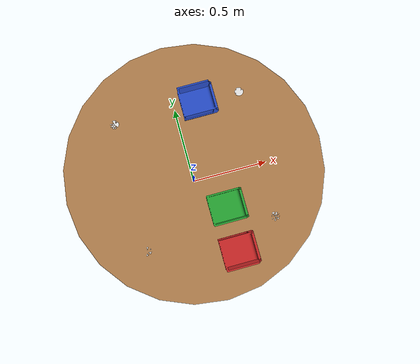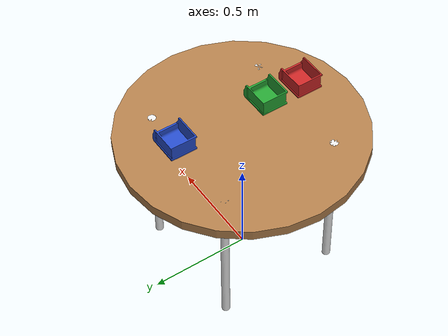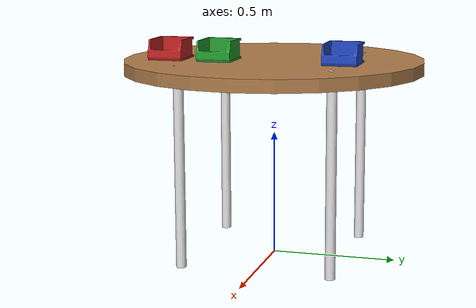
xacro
<?xml version="1.0"?>
<robot name="table"
       xmlns:xi="http://www.w3.org/2001/XInclude"
       xmlns:xacro="http://www.ros.org/wiki/xacro"
       xmlns:gazebo="http://playerstage.sourceforge.net/gazebo/xmlschema/#gz"
       xmlns:model="http://playerstage.sourceforge.net/gazebo/xmlschema/#model"
       xmlns:sensor="http://playerstage.sourceforge.net/gazebo/xmlschema/#sensor"
       xmlns:body="http://playerstage.sourceforge.net/gazebo/xmlschema/#body"
       xmlns:geom="http://playerstage.sourceforge.net/gazebo/xmlschema/#geom"
       xmlns:joint="http://playerstage.sourceforge.net/gazebo/xmlschema/#joint"
       xmlns:interface="http://playerstage.sourceforge.net/gazebo/xmlschema/#interface"
       xmlns:rendering="http://playerstage.sourceforge.net/gazebo/xmlschema/#rendering"
       xmlns:renderable="http://playerstage.sourceforge.net/gazebo/xmlschema/#renderable"
       xmlns:controller="http://playerstage.sourceforge.net/gazebo/xmlschema/#controller"
       xmlns:physics="http://playerstage.sourceforge.net/gazebo/xmlschema/#physics">

  <xacro:property name="table_height" value="0.8" />
  <xacro:property name="table_radius" value="0.6" />
  <xacro:property name="table_width" value="1.2" />
  <xacro:property name="table_depth" value="1.2" />
  <xacro:property name="leg_radius" value="0.02" />
  <xacro:property name="table_x" value="0.0" />
  <xacro:property name="table_y" value="0.0" />
  <xacro:property name="table_z" value="0.0" />

  <xacro:property name="table_top_thickness" value="0.05"/>

  <xacro:property name="M_PI" value="3.1415926535897931" />

  <xacro:include filename="$(find kuka_description)/urdf/container.xacro"/>

  <!-- tabletop height is .55+.01+.025=.585 -->
  <link name="table_top_link">
    <inertial>
      <mass value="1.0" />
      <origin xyz="${table_x} ${table_y} ${table_z+table_height-table_top_thickness/2}" />
      <inertia ixx="1" ixy="0"  ixz="0"
               iyy="1" iyz="0"
               izz="1" />
    </inertial>
    <visual>
      <origin xyz="${table_x} ${table_y} ${table_z+table_height-table_top_thickness/2}" />
      <geometry>
        <cylinder length="${table_top_thickness}" radius="${table_radius}"/>
      </geometry>
    </visual>
    <collision>
      <origin xyz="${table_x} ${table_y} ${table_z+table_height-table_top_thickness/2}" />
      <geometry>
        <cylinder length="${table_top_thickness}" radius="${table_radius}"/>
      </geometry>
    </collision>
  </link>
  <gazebo reference="table_top_link">
    <material>Gazebo/LightWood</material>
    <mu1>50.0</mu1>
    <mu2>50.0</mu2>
    <kp>1000000.0</kp>
    <kd>1.0</kd>
  </gazebo>

  <joint name="leg1_joint" type="fixed" >
    <parent link="table_top_link" />
    <origin xyz="${table_x+table_radius/2} ${table_y+table_radius/2} ${table_z+table_height }" rpy="0 0 0" />
    <child link="leg1_link" />
  </joint>
  <link name="leg1_link">
    <inertial>
      <mass value="1.0" />
      <origin xyz="0 0 ${-table_height/2}" />
      <inertia ixx="0.1" ixy="0"  ixz="0"
               iyy="0.1" iyz="0"
               izz="0.01" />
    </inertial>
    <visual>
      <origin xyz="0.0 0.0 ${-table_height/2}" rpy="0 0 0" />
      <geometry>
        <cylinder radius="${leg_radius}" length="${table_height}" />
      </geometry>
    </visual>
    <collision>
      <origin xyz="0.0 0.0 ${-table_height/2}" rpy="0.0 0.0 0.0" />
      <geometry>
        <cylinder radius="${leg_radius}" length="${table_height}" />
      </geometry>
    </collision>
  </link>
  <gazebo reference="leg1_link">
    <material>Gazebo/White</material>
    <mu1>1000.0</mu1>
    <mu2>1000.0</mu2>
    <kp>10000000.0</kp>
    <kd>1.0</kd>
    <selfCollide>true</selfCollide>
  </gazebo>

  <joint name="leg2_joint" type="fixed" >
    <parent link="table_top_link" />
    <origin xyz="${table_x-table_radius/2} ${table_y+table_radius/2} ${table_z+table_height }" rpy="0 0 0" />
    <child link="leg2_link" />
  </joint>
  <link name="leg2_link">
    <inertial>
      <mass value="1.0" />
      <origin xyz="0 0 ${-table_height/2}" />
      <inertia ixx="0.1" ixy="0"  ixz="0"
               iyy="0.1" iyz="0"
               izz="0.01" />
    </inertial>
    <visual>
      <origin xyz="0.0 0.0 ${-table_height/2}" rpy="0 0 0" />
      <geometry>
        <cylinder radius="${leg_radius}" length="${table_height}" />
      </geometry>
    </visual>
    <collision>
      <origin xyz="0.0 0.0 ${-table_height/2}" rpy="0.0 0.0 0.0" />
      <geometry>
        <cylinder radius="${leg_radius}" length="${table_height}" />
      </geometry>
    </collision>
  </link>
  <gazebo reference="leg2_link">
    <material>Gazebo/White</material>
    <mu1>1000.0</mu1>
    <mu2>1000.0</mu2>
    <kp>10000000.0</kp>
    <kd>1.0</kd>
    <selfCollide>true</selfCollide>
  </gazebo>

  <joint name="leg3_joint" type="fixed" >
    <parent link="table_top_link" />
    <origin xyz="${table_x+table_radius/2} ${table_y-table_radius/2} ${table_z+table_height}" rpy="0 0 0" />
    <child link="leg3_link" />
  </joint>
  <link name="leg3_link">
    <inertial>
      <mass value="1.0" />
      <origin xyz="0 0 ${-table_height/2}" />
      <inertia ixx="0.1" ixy="0"  ixz="0"
               iyy="0.1" iyz="0"
               izz="0.01" />
    </inertial>
    <visual>
      <origin xyz="0.0 0.0 ${-table_height/2}" rpy="0 0 0" />
      <geometry>
        <cylinder radius="${leg_radius}" length="${table_height}" />
      </geometry>
    </visual>
    <collision>
      <origin xyz="0.0 0.0 ${-table_height/2}" rpy="0.0 0.0 0.0" />
      <geometry>
        <cylinder radius="${leg_radius}" length="${table_height}" />
      </geometry>
    </collision>
  </link>
  <gazebo reference="leg3_link">
    <material>Gazebo/White</material>
    <mu1>1000.0</mu1>
    <mu2>1000.0</mu2>
    <kp>10000000.0</kp>
    <kd>1.0</kd>
    <selfCollide>true</selfCollide>
  </gazebo>

  <joint name="leg4_joint" type="fixed" >
    <parent link="table_top_link" />
    <origin xyz="${table_x-table_radius/2} ${table_y-table_radius/2} ${table_z+table_height }" rpy="0 0 0" />
    <child link="leg4_link" />
  </joint>
  <link name="leg4_link">
    <inertial>
      <mass value="1.0" />
      <origin xyz="0 0 ${-table_height/2}" />
      <inertia ixx="0.1" ixy="0"  ixz="0"
               iyy="0.1" iyz="0"
               izz="0.01" />
    </inertial>
    <visual>
      <origin xyz="0.0 0.0 ${-table_height/2}" rpy="0 0 0" />
      <geometry>
        <cylinder radius="${leg_radius}" length="${table_height}" />
      </geometry>
    </visual>
    <collision>
      <origin xyz="0.0 0.0 ${-table_height/2}" rpy="0.0 0.0 0.0" />
      <geometry>
        <cylinder radius="${leg_radius}" length="${table_height}" />
      </geometry>
    </collision>
  </link>
  <gazebo reference="leg4_link">
    <material>Gazebo/White</material>
    <mu1>1000.0</mu1>
    <mu2>1000.0</mu2>
    <kp>10000000.0</kp>
    <kd>1.0</kd>
    <selfCollide>true</selfCollide>
  </gazebo>
  <gazebo>
    <canonicalBody>table_top_link</canonicalBody>
  </gazebo>

</robot>

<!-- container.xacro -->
<robot xmlns:xacro="http://wiki.ros.org/xacro">

  <joint name="container_red_joint" type="fixed">
    <parent link="table_top_link"/>
    <child link="container_red_link"/>
    <origin xyz="0.1 -0.4 0.84" rpy="0 0 0"/>
  </joint>

  <link name="container_red_link">
    <visual>
        <origin xyz="0 0 0" rpy="0 0 0" />
        <geometry>
          <mesh filename="package://simulation_moveit/meshes/visual/container.stl" />
        </geometry>
      </visual>
      <collision>
        <origin xyz="0 0 0" rpy="0 0 0" />
        <geometry>
          <mesh filename="package://simulation_moveit/meshes/collision/container.stl" />
        </geometry>
      </collision>
  </link>

  <gazebo reference="container_red_link">
    <material>Gazebo/Red</material>
  </gazebo>

  <joint name="container_green_joint" type="fixed">
    <parent link="table_top_link"/>
    <child link="container_green_link"/>
    <origin xyz="0.1 -0.2 0.84" rpy="0 0 0"/>
  </joint>

  <link name="container_green_link">
    <visual>
        <origin xyz="0 0 0" rpy="0 0 0" />
        <geometry>
          <mesh filename="package://simulation_moveit/meshes/visual/container.stl" />
        </geometry>
      </visual>
      <collision>
        <origin xyz="0 0 0" rpy="0 0 0" />
        <geometry>
          <mesh filename="package://simulation_moveit/meshes/collision/container.stl" />
        </geometry>
      </collision>
  </link>

  <gazebo reference="container_green_link">
    <material>Gazebo/Green</material>
  </gazebo>

  <joint name="container_blue_joint" type="fixed">
    <parent link="table_top_link"/>
    <child link="container_blue_link"/>
    <origin xyz="0.1 0.3 0.84" rpy="0 0 0"/>
  </joint>

  <link name="container_blue_link">
    <visual>
        <origin xyz="0 0 0" rpy="0 0 0" />
        <geometry>
          <mesh filename="package://simulation_moveit/meshes/visual/container.stl" />
        </geometry>
      </visual>
      <collision>
        <origin xyz="0 0 0" rpy="0 0 0" />
        <geometry>
          <mesh filename="package://simulation_moveit/meshes/collision/container.stl" />
        </geometry>
      </collision>
  </link>

  <gazebo reference="container_blue_link">
    <material>Gazebo/Blue</material>
  </gazebo>

</robot>
